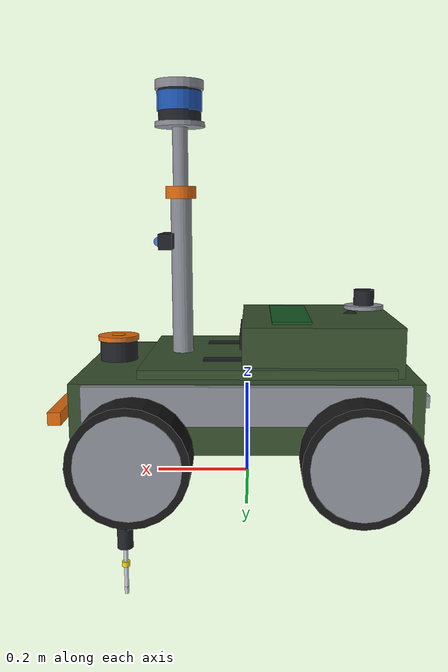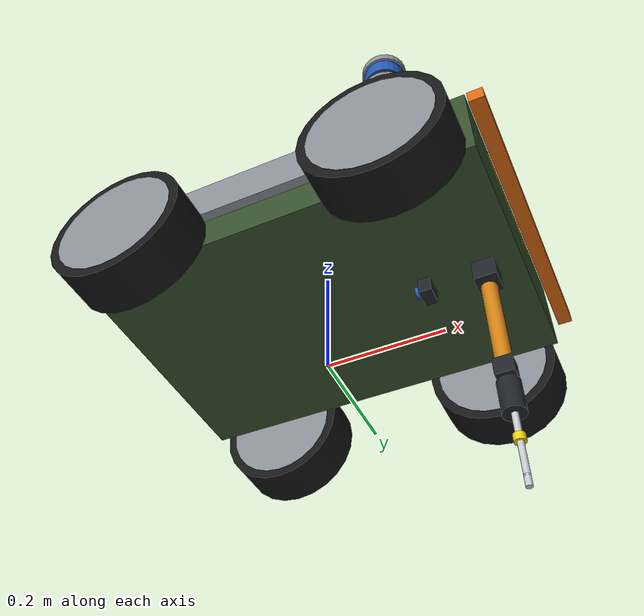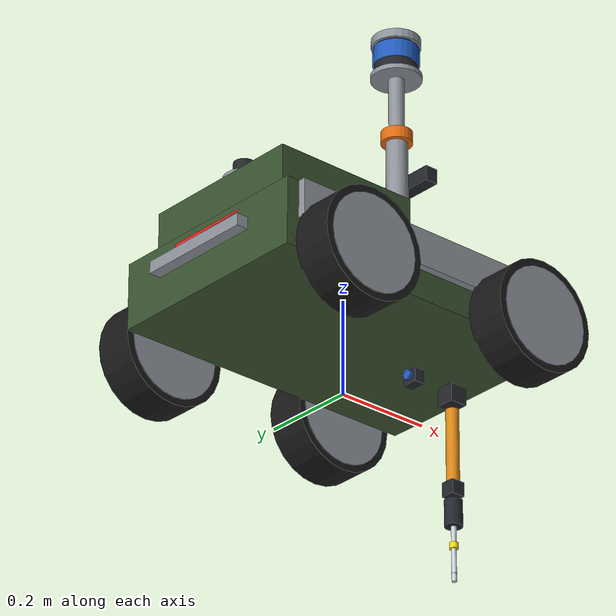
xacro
<?xml version="1.0"?>
<robot xmlns:xacro="http://www.ros.org/wiki/xacro"
       xmlns:gz="http://gazebosim.org/schema"
       name="agribot">

  <!-- ===== CHASSIS ===== -->
  <xacro:property name="base_l"  value="0.68"/>
  <xacro:property name="base_w"  value="0.46"/>
  <xacro:property name="base_h"  value="0.14"/>
  <xacro:property name="base_m"  value="18.0"/>

  <!-- ===== WHEELS ===== -->
  <xacro:property name="wr"    value="0.115"/>   <!-- radius -->
  <xacro:property name="ww"    value="0.085"/>   <!-- width  -->
  <xacro:property name="wm"    value="1.4"/>     <!-- mass   -->
  <xacro:property name="wx"    value="0.215"/>   <!-- half wheelbase -->
  <xacro:property name="wy"    value="0.285"/>   <!-- half track -->

  <!-- ===== ARM ===== -->
  <xacro:property name="arm_r" value="0.015"/>

  <!-- ==============================================================
       INERTIA HELPERS
       ============================================================== -->
  <xacro:macro name="box_inertia" params="m l w h">
    <inertial>
      <mass value="${m}"/>
      <inertia ixx="${m*(w*w+h*h)/12}" ixy="0" ixz="0"
               iyy="${m*(l*l+h*h)/12}" iyz="0"
               izz="${m*(l*l+w*w)/12}"/>
    </inertial>
  </xacro:macro>

  <xacro:macro name="cyl_inertia" params="m r h">
    <inertial>
      <mass value="${m}"/>
      <inertia ixx="${m*(3*r*r+h*h)/12}" ixy="0" ixz="0"
               iyy="${m*(3*r*r+h*h)/12}" iyz="0"
               izz="${m*r*r/2}"/>
    </inertial>
  </xacro:macro>

  <xacro:macro name="sph_inertia" params="m r">
    <inertial>
      <mass value="${m}"/>
      <inertia ixx="${2*m*r*r/5}" ixy="0" ixz="0"
               iyy="${2*m*r*r/5}" iyz="0"
               izz="${2*m*r*r/5}"/>
    </inertial>
  </xacro:macro>

  <xacro:macro name="null_inertia">
    <inertial>
      <mass value="0.001"/>
      <inertia ixx="0.000001" ixy="0" ixz="0" iyy="0.000001" iyz="0" izz="0.000001"/>
    </inertial>
  </xacro:macro>

  <!-- ==============================================================
       MATERIALS
       ============================================================== -->
  <!-- Chassis — matte olive/military green body panels -->
  <material name="body_green">   <color rgba="0.22 0.32 0.18 1.0"/></material>
  <!-- Accent — satin orange for safety elements -->
  <material name="accent_orange"><color rgba="0.88 0.42 0.06 1.0"/></material>
  <!-- Frame rails — brushed aluminium -->
  <material name="alu_frame">    <color rgba="0.55 0.57 0.60 1.0"/></material>
  <!-- Tyre rubber -->
  <material name="rubber_black"> <color rgba="0.09 0.09 0.09 1.0"/></material>
  <!-- Wheel hub -->
  <material name="hub_alloy">    <color rgba="0.78 0.80 0.83 1.0"/></material>
  <!-- Sensor housing — dark charcoal -->
  <material name="sensor_dark">  <color rgba="0.13 0.14 0.16 1.0"/></material>
  <!-- Sensor glass / lens -->
  <material name="lens_blue">    <color rgba="0.18 0.44 0.88 0.85"/></material>
  <!-- PCB green -->
  <material name="pcb_green">    <color rgba="0.08 0.35 0.14 1.0"/></material>
  <!-- Battery black -->
  <material name="batt_dark">    <color rgba="0.10 0.10 0.12 1.0"/></material>
  <!-- Probe tip silver -->
  <material name="probe_silver"> <color rgba="0.80 0.82 0.85 1.0"/></material>
  <!-- Status LED yellow -->
  <material name="led_yellow">   <color rgba="0.95 0.85 0.05 1.0"/></material>
  <!-- Status LED red -->
  <material name="led_red">      <color rgba="0.88 0.12 0.10 1.0"/></material>
  <!-- Arm orange-amber -->
  <material name="arm_amber">    <color rgba="0.85 0.52 0.08 1.0"/></material>

  <xacro:macro name="wheel" params="prefix x_s y_s">
    <link name="${prefix}_wheel">
      <!-- Tyre -->
      <visual>
        <origin xyz="0 0 0" rpy="${pi/2} 0 0"/>
        <geometry><cylinder radius="${wr}" length="${ww}"/></geometry>
        <material name="rubber_black"/>
      </visual>
      <!-- Inner tread ring (slightly narrower, lighter) -->
      <visual>
        <origin xyz="0 0 0" rpy="${pi/2} 0 0"/>
        <geometry><cylinder radius="${wr*0.87}" length="${ww*1.02}"/></geometry>
        <material name="alu_frame"/>
      </visual>
      <!-- Hub disc -->
      <visual>
        <origin xyz="0 ${y_s*0.015} 0" rpy="${pi/2} 0 0"/>
        <geometry><cylinder radius="${wr*0.50}" length="${ww*0.28}"/></geometry>
        <material name="hub_alloy"/>
      </visual>
      <!-- Hub centre cap -->
      <visual>
        <origin xyz="0 ${y_s*0.020} 0" rpy="${pi/2} 0 0"/>
        <geometry><cylinder radius="${wr*0.14}" length="${ww*0.18}"/></geometry>
        <material name="accent_orange"/>
      </visual>
      <!-- Lug nut ring (outer) -->
      <visual>
        <origin xyz="0 ${y_s*0.022} 0" rpy="${pi/2} 0 0"/>
        <geometry><cylinder radius="${wr*0.32}" length="${ww*0.06}"/></geometry>
        <material name="sensor_dark"/>
      </visual>
      <collision>
        <origin xyz="0 0 0" rpy="${pi/2} 0 0"/>
        <geometry><cylinder radius="${wr}" length="${ww}"/></geometry>
      </collision>
      <xacro:cyl_inertia m="${wm}" r="${wr}" h="${ww}"/>
    </link>

    <joint name="${prefix}_wheel_joint" type="continuous">
      <parent link="base_link"/>
      <child  link="${prefix}_wheel"/>
      <origin xyz="${x_s*wx} ${y_s*wy} ${-base_h/2 + 0.005}" rpy="0 0 0"/>
      <axis xyz="0 1 0"/>
      <limit effort="25.0" velocity="12.0"/>
      <dynamics damping="0.25" friction="0.55"/>
    </joint>

    <gazebo reference="${prefix}_wheel">
      <mu1>1.1</mu1>
      <mu2>0.15</mu2>
      <fdir1>1 0 0</fdir1>
      <kp>8e5</kp>
      <kd>20.0</kd>
      <material>Gazebo/Black</material>
    </gazebo>
  </xacro:macro>

  <!-- ==============================================================
       BASE FOOTPRINT
       ============================================================== -->
  <link name="base_footprint"/>
  <joint name="base_footprint_joint" type="fixed">
    <parent link="base_footprint"/>
    <child  link="base_link"/>
    <origin xyz="0 0 ${wr + base_h/2 - 0.005}" rpy="0 0 0"/>
  </joint>

  <!-- ==============================================================
       BASE LINK — multi-visual structured chassis
       ============================================================== -->
  <link name="base_link">
    <!-- Main deck plate -->
    <visual>
      <origin xyz="0 0 0" rpy="0 0 0"/>
      <geometry><box size="${base_l} ${base_w} ${base_h}"/></geometry>
      <material name="body_green"/>
    </visual>
    <!-- Left side panel (raised skirt) -->
    <visual>
      <origin xyz="0 ${base_w/2 + 0.008} 0.03" rpy="0 0 0"/>
      <geometry><box size="${base_l*0.92} 0.016 ${base_h*0.55}"/></geometry>
      <material name="alu_frame"/>
    </visual>
    <!-- Right side panel -->
    <visual>
      <origin xyz="0 ${-(base_w/2 + 0.008)} 0.03" rpy="0 0 0"/>
      <geometry><box size="${base_l*0.92} 0.016 ${base_h*0.55}"/></geometry>
      <material name="alu_frame"/>
    </visual>
    <!-- Front bull-bar cross-tube -->
    <visual>
      <origin xyz="${base_l/2 + 0.02} 0 0.01" rpy="0 0 0"/>
      <geometry><box size="0.025 ${base_w + 0.06} 0.025"/></geometry>
      <material name="accent_orange"/>
    </visual>
    <!-- Rear tow-bar -->
    <visual>
      <origin xyz="${-(base_l/2 + 0.02)} 0 0.01" rpy="0 0 0"/>
      <geometry><box size="0.025 ${base_w*0.55} 0.025"/></geometry>
      <material name="alu_frame"/>
    </visual>
    <!-- Top cover (slightly smaller than deck) -->
    <visual>
      <origin xyz="-0.04 0 ${base_h/2 + 0.012}" rpy="0 0 0"/>
      <geometry><box size="${base_l*0.74} ${base_w*0.88} 0.018"/></geometry>
      <material name="body_green"/>
    </visual>
    <!-- Venting slots (two dark bars on top) -->
    <visual>
      <origin xyz="-0.04 0.10 ${base_h/2 + 0.022}" rpy="0 0 0"/>
      <geometry><box size="${base_l*0.38} 0.030 0.004"/></geometry>
      <material name="sensor_dark"/>
    </visual>
    <visual>
      <origin xyz="-0.04 -0.10 ${base_h/2 + 0.022}" rpy="0 0 0"/>
      <geometry><box size="${base_l*0.38} 0.030 0.004"/></geometry>
      <material name="sensor_dark"/>
    </visual>
    <!-- Front status light bar -->
    <visual>
      <origin xyz="${base_l/2 - 0.005} 0 0.05" rpy="0 0 0"/>
      <geometry><box size="0.010 ${base_w*0.55} 0.018"/></geometry>
      <material name="led_yellow"/>
    </visual>
    <!-- Rear brake light strip -->
    <visual>
      <origin xyz="${-(base_l/2 - 0.005)} 0 0.05" rpy="0 0 0"/>
      <geometry><box size="0.010 ${base_w*0.40} 0.014"/></geometry>
      <material name="led_red"/>
    </visual>

    <collision>
      <origin xyz="0 0 0" rpy="0 0 0"/>
      <geometry><box size="${base_l} ${base_w} ${base_h}"/></geometry>
    </collision>
    <xacro:box_inertia m="${base_m}" l="${base_l}" w="${base_w}" h="${base_h}"/>
  </link>

  <gazebo reference="base_link">
    <material>Gazebo/DarkGreen</material>
  </gazebo>

  <!-- ===== FOUR WHEELS ===== -->
  <xacro:wheel prefix="fl" x_s=" 1" y_s=" 1"/>
  <xacro:wheel prefix="fr" x_s=" 1" y_s="-1"/>
  <xacro:wheel prefix="rl" x_s="-1" y_s=" 1"/>
  <xacro:wheel prefix="rr" x_s="-1" y_s="-1"/>

  <!-- ==============================================================
       ELECTRONICS BAY (raised module, rear half of chassis)
       ============================================================== -->
  <link name="elec_bay">
    <!-- Bay shell -->
    <visual>
      <origin xyz="0 0 0" rpy="0 0 0"/>
      <geometry><box size="0.32 0.36 0.10"/></geometry>
      <material name="body_green"/>
    </visual>
    <!-- Battery pack (left) -->
    <visual>
      <origin xyz="-0.02 0.09 0.025" rpy="0 0 0"/>
      <geometry><box size="0.20 0.13 0.048"/></geometry>
      <material name="batt_dark"/>
    </visual>
    <!-- Compute unit (right) -->
    <visual>
      <origin xyz="-0.02 -0.08 0.030" rpy="0 0 0"/>
      <geometry><box size="0.14 0.10 0.040"/></geometry>
      <material name="sensor_dark"/>
    </visual>
    <!-- PCB board -->
    <visual>
      <origin xyz="0.06 0 0.052" rpy="0 0 0"/>
      <geometry><box size="0.08 0.26 0.006"/></geometry>
      <material name="pcb_green"/>
    </visual>
    <!-- Connector strip (front face) -->
    <visual>
      <origin xyz="0.162 0 0.010" rpy="0 0 0"/>
      <geometry><box size="0.006 0.22 0.030"/></geometry>
      <material name="sensor_dark"/>
    </visual>
    <xacro:box_inertia m="3.5" l="0.32" w="0.36" h="0.10"/>
  </link>

  <joint name="elec_bay_joint" type="fixed">
    <parent link="base_link"/>
    <child  link="elec_bay"/>
    <origin xyz="-0.15 0 ${base_h/2 + 0.05}" rpy="0 0 0"/>
  </joint>

  <!-- ==============================================================
       SENSOR MAST (front, tall, slim)
       ============================================================== -->
  <link name="sensor_mast">
    <!-- Lower pole -->
    <visual>
      <origin xyz="0 0 0.18" rpy="0 0 0"/>
      <geometry><cylinder radius="0.022" length="0.36"/></geometry>
      <material name="alu_frame"/>
    </visual>
    <!-- Upper pole (thinner) -->
    <visual>
      <origin xyz="0 0 0.44" rpy="0 0 0"/>
      <geometry><cylinder radius="0.016" length="0.16"/></geometry>
      <material name="alu_frame"/>
    </visual>
    <!-- Mid clamp ring -->
    <visual>
      <origin xyz="0 0 0.36" rpy="0 0 0"/>
      <geometry><cylinder radius="0.032" length="0.025"/></geometry>
      <material name="accent_orange"/>
    </visual>
    <xacro:cyl_inertia m="0.45" r="0.022" h="0.52"/>
  </link>

  <joint name="mast_joint" type="fixed">
    <parent link="base_link"/>
    <child  link="sensor_mast"/>
    <origin xyz="0.14 0 ${base_h/2}" rpy="0 0 0"/>
  </joint>

  <!-- ==============================================================
       3D LiDAR (Ouster-style) — atop mast
       ============================================================== -->
  <link name="lidar_link">
    <!-- Cylindrical body -->
    <visual>
      <origin xyz="0 0 0" rpy="0 0 0"/>
      <geometry><cylinder radius="0.044" length="0.072"/></geometry>
      <material name="sensor_dark"/>
    </visual>
    <!-- Spinning ring (top) -->
    <visual>
      <origin xyz="0 0 0.040" rpy="0 0 0"/>
      <geometry><cylinder radius="0.050" length="0.018"/></geometry>
      <material name="alu_frame"/>
    </visual>
    <!-- Window band (translucent blue) -->
    <visual>
      <origin xyz="0 0 0.008" rpy="0 0 0"/>
      <geometry><cylinder radius="0.047" length="0.038"/></geometry>
      <material name="lens_blue"/>
    </visual>
    <!-- Base flange -->
    <visual>
      <origin xyz="0 0 -0.038" rpy="0 0 0"/>
      <geometry><cylinder radius="0.052" length="0.010"/></geometry>
      <material name="alu_frame"/>
    </visual>
    <collision>
      <origin xyz="0 0 0" rpy="0 0 0"/>
      <geometry><cylinder radius="0.052" length="0.075"/></geometry>
    </collision>
    <xacro:cyl_inertia m="0.48" r="0.044" h="0.072"/>
  </link>

  <joint name="lidar_joint" type="fixed">
    <parent link="sensor_mast"/>
    <child  link="lidar_link"/>
    <origin xyz="0 0 0.535" rpy="0 0 0"/>
  </joint>

  <gazebo reference="lidar_link">
    <sensor name="lidar_3d" type="gpu_lidar">
      <pose>0 0 0 0 0 0</pose>
      <visualize>false</visualize>
      <update_rate>20</update_rate>
      <ray>
        <scan>
          <horizontal>
            <samples>512</samples>
            <resolution>1</resolution>
            <min_angle>${-pi}</min_angle>
            <max_angle>${pi}</max_angle>
          </horizontal>
          <vertical>
            <samples>16</samples>
            <resolution>1</resolution>
            <min_angle>${-pi*15/180}</min_angle>
            <max_angle>${pi*15/180}</max_angle>
          </vertical>
        </scan>
        <range>
          <min>0.12</min>
          <max>100.0</max>
          <resolution>0.003</resolution>
        </range>
        <noise>
          <type>gaussian</type>
          <mean>0.0</mean>
          <stddev>0.006</stddev>
        </noise>
      </ray>
      <topic>/lidar/points</topic>
    </sensor>
    <material>Gazebo/Black</material>
  </gazebo>

  <!-- ==============================================================
       STEREO DEPTH CAMERA HEAD (mounted on mast, mid-height)
       ============================================================== -->
  <link name="stereo_camera_link">
    <!-- Bar housing -->
    <visual>
      <origin xyz="0 0 0" rpy="0 0 0"/>
      <geometry><box size="0.028 0.140 0.032"/></geometry>
      <material name="sensor_dark"/>
    </visual>
    <!-- Left lens -->
    <visual>
      <origin xyz="0.016 -0.046 0" rpy="${pi/2} 0 0"/>
      <geometry><cylinder radius="0.009" length="0.010"/></geometry>
      <material name="lens_blue"/>
    </visual>
    <!-- RGB centre lens -->
    <visual>
      <origin xyz="0.016 0 0" rpy="${pi/2} 0 0"/>
      <geometry><cylinder radius="0.010" length="0.010"/></geometry>
      <material name="lens_blue"/>
    </visual>
    <!-- Right lens -->
    <visual>
      <origin xyz="0.016 0.046 0" rpy="${pi/2} 0 0"/>
      <geometry><cylinder radius="0.009" length="0.010"/></geometry>
      <material name="lens_blue"/>
    </visual>
    <!-- Status LED on face -->
    <visual>
      <origin xyz="0.016 -0.060 0.010" rpy="${pi/2} 0 0"/>
      <geometry><sphere radius="0.004"/></geometry>
      <material name="led_yellow"/>
    </visual>
    <collision>
      <origin xyz="0 0 0" rpy="0 0 0"/>
      <geometry><box size="0.030 0.140 0.034"/></geometry>
    </collision>
    <xacro:box_inertia m="0.095" l="0.030" w="0.140" h="0.034"/>
  </link>

  <joint name="stereo_camera_joint" type="fixed">
    <parent link="sensor_mast"/>
    <child  link="stereo_camera_link"/>
    <origin xyz="0.028 0 0.26" rpy="0 0 0"/>
  </joint>

  <link name="stereo_camera_optical"/>
  <joint name="stereo_optical_joint" type="fixed">
    <parent link="stereo_camera_link"/>
    <child  link="stereo_camera_optical"/>
    <origin xyz="0 0 0" rpy="${-pi/2} 0 ${-pi/2}"/>
  </joint>

  <gazebo reference="stereo_camera_link">
    <sensor name="stereo_depth" type="depth">
      <gz:frame_id>stereo_camera_optical</gz:frame_id>
      <pose>0 0 0 0 0 0</pose>
      <visualize>false</visualize>
      <update_rate>30</update_rate>
      <camera>
        <horizontal_fov>1.518</horizontal_fov>
        <image>
          <width>640</width>
          <height>480</height>
          <format>R8G8B8</format>
        </image>
        <clip><near>0.08</near><far>10.0</far></clip>
        <noise>
          <type>gaussian</type>
          <mean>0.0</mean>
          <stddev>0.002</stddev>
        </noise>
      </camera>
      <topic>/camera/depth</topic>
    </sensor>
    <material>Gazebo/Black</material>
  </gazebo>

  <!-- ==============================================================
       CROP INSPECTION CAMERA (belly-mounted, nadir)
       ============================================================== -->
  <link name="nadir_camera_link">
    <visual>
      <origin xyz="0 0 0" rpy="0 0 0"/>
      <geometry><box size="0.034 0.034 0.022"/></geometry>
      <material name="sensor_dark"/>
    </visual>
    <visual>
      <origin xyz="0 0 -0.014" rpy="0 0 0"/>
      <geometry><cylinder radius="0.010" length="0.010"/></geometry>
      <material name="lens_blue"/>
    </visual>
    <xacro:null_inertia/>
  </link>

  <joint name="nadir_camera_joint" type="fixed">
    <parent link="base_link"/>
    <child  link="nadir_camera_link"/>
    <!-- Points straight down, centred forward on chassis -->
    <origin xyz="0.18 0 ${-base_h/2 - 0.012}" rpy="0 ${pi/2} 0"/>
  </joint>

  <link name="nadir_camera_optical"/>
  <joint name="nadir_optical_joint" type="fixed">
    <parent link="nadir_camera_link"/>
    <child  link="nadir_camera_optical"/>
    <origin xyz="0 0 0" rpy="${-pi/2} 0 ${-pi/2}"/>
  </joint>

  <gazebo reference="nadir_camera_link">
    <sensor name="nadir_cam" type="camera">
      <gz:frame_id>nadir_camera_optical</gz:frame_id>
      <update_rate>10</update_rate>
      <visualize>false</visualize>
      <topic>/camera/nadir</topic>
      <camera>
        <horizontal_fov>1.047</horizontal_fov>
        <image><width>640</width><height>480</height><format>R8G8B8</format></image>
        <clip><near>0.05</near><far>3.0</far></clip>
      </camera>
    </sensor>
    <material>Gazebo/Black</material>
  </gazebo>

  <!-- ==============================================================
       IMU
       ============================================================== -->
  <link name="imu_link">
    <visual>
      <origin xyz="0 0 0" rpy="0 0 0"/>
      <geometry><box size="0.028 0.028 0.008"/></geometry>
      <material name="led_red"/>
    </visual>
    <xacro:null_inertia/>
  </link>

  <joint name="imu_joint" type="fixed">
    <parent link="base_link"/>
    <child  link="imu_link"/>
    <origin xyz="0 0 0" rpy="0 0 0"/>
  </joint>

  <gazebo reference="imu_link">
    <sensor name="imu" type="imu">
      <always_on>true</always_on>
      <update_rate>400</update_rate>
      <imu>
        <angular_velocity>
          <x><noise type="gaussian"><mean>0</mean><stddev>0.00018</stddev></noise></x>
          <y><noise type="gaussian"><mean>0</mean><stddev>0.00018</stddev></noise></y>
          <z><noise type="gaussian"><mean>0</mean><stddev>0.00018</stddev></noise></z>
        </angular_velocity>
        <linear_acceleration>
          <x><noise type="gaussian"><mean>0</mean><stddev>0.009</stddev></noise></x>
          <y><noise type="gaussian"><mean>0</mean><stddev>0.009</stddev></noise></y>
          <z><noise type="gaussian"><mean>0</mean><stddev>0.009</stddev></noise></z>
        </linear_acceleration>
      </imu>
      <topic>/imu/data_raw</topic>
    </sensor>
  </gazebo>

  <!-- ==============================================================
       GPS
       ============================================================== -->
  <link name="gps_link">
    <!-- Ground plane -->
    <visual>
      <origin xyz="0 0 0.004" rpy="0 0 0"/>
      <geometry><cylinder radius="0.042" length="0.008"/></geometry>
      <material name="alu_frame"/>
    </visual>
    <!-- Antenna body -->
    <visual>
      <origin xyz="0 0 0.024" rpy="0 0 0"/>
      <geometry><cylinder radius="0.022" length="0.034"/></geometry>
      <material name="sensor_dark"/>
    </visual>
    <xacro:null_inertia/>
  </link>

  <joint name="gps_joint" type="fixed">
    <parent link="elec_bay"/>
    <child  link="gps_link"/>
    <origin xyz="-0.10 0 0.065" rpy="0 0 0"/>
  </joint>

  <gazebo reference="gps_link">
    <sensor name="navsat" type="navsat">
      <always_on>true</always_on>
      <update_rate>10</update_rate>
      <topic>/gps/fix</topic>
    </sensor>
  </gazebo>

  <!-- Turret base -->
  <link name="arm_turret">
    <visual>
      <origin xyz="0 0 0.028" rpy="0 0 0"/>
      <geometry><cylinder radius="0.040" length="0.050"/></geometry>
      <material name="sensor_dark"/>
    </visual>
    <!-- Rotation ring detail -->
    <visual>
      <origin xyz="0 0 0.052" rpy="0 0 0"/>
      <geometry><cylinder radius="0.044" length="0.010"/></geometry>
      <material name="accent_orange"/>
    </visual>
    <xacro:cyl_inertia m="0.30" r="0.040" h="0.055"/>
  </link>

  <!-- Turret yaw (pan left-right, looking for row entry point) -->
  <joint name="arm_turret_joint" type="revolute">
    <parent link="base_link"/>
    <child  link="arm_turret"/>
    <origin xyz="${base_l/2 - 0.06} 0 ${base_h/2}" rpy="0 0 0"/>
    <axis xyz="0 0 1"/>
    <limit lower="${-pi/3}" upper="${pi/3}" effort="12.0" velocity="1.2"/>
    <dynamics damping="0.8" friction="0.3"/>
  </joint>

  <!-- Upper arm -->
  <link name="arm_upper">
    <visual>
      <origin xyz="0 0 ${-0.21/2}" rpy="0 0 0"/>
      <geometry><cylinder radius="${arm_r}" length="0.21"/></geometry>
      <material name="arm_amber"/>
    </visual>
    <!-- Elbow servo box -->
    <visual>
      <origin xyz="0 0 -0.22" rpy="0 0 0"/>
      <geometry><box size="0.038 0.038 0.038"/></geometry>
      <material name="sensor_dark"/>
    </visual>
    <collision>
      <origin xyz="0 0 ${-0.21/2}" rpy="0 0 0"/>
      <geometry><cylinder radius="${arm_r}" length="0.21"/></geometry>
    </collision>
    <xacro:cyl_inertia m="0.14" r="${arm_r}" h="0.21"/>
  </link>

  <!-- Shoulder pitch (lifts/lowers arm) -->
  <joint name="arm_shoulder_joint" type="revolute">
    <parent link="arm_turret"/>
    <child  link="arm_upper"/>
    <origin xyz="0 0 0.058" rpy="0 0 0"/>
    <axis xyz="0 1 0"/>
    <limit lower="${-pi/2}" upper="${pi/6}" effort="14.0" velocity="1.0"/>
    <dynamics damping="0.6" friction="0.25"/>
  </joint>

  <!-- Forearm -->
  <link name="arm_forearm">
    <visual>
      <origin xyz="0 0 ${-0.16/2}" rpy="0 0 0"/>
      <geometry><cylinder radius="${arm_r*0.88}" length="0.16"/></geometry>
      <material name="arm_amber"/>
    </visual>
    <!-- Wrist servo -->
    <visual>
      <origin xyz="0 0 -0.17" rpy="0 0 0"/>
      <geometry><box size="0.030 0.030 0.030"/></geometry>
      <material name="sensor_dark"/>
    </visual>
    <collision>
      <origin xyz="0 0 ${-0.16/2}" rpy="0 0 0"/>
      <geometry><cylinder radius="${arm_r}" length="0.16"/></geometry>
    </collision>
    <xacro:cyl_inertia m="0.09" r="${arm_r}" h="0.16"/>
  </link>

  <joint name="arm_elbow_joint" type="revolute">
    <parent link="arm_upper"/>
    <child  link="arm_forearm"/>
    <origin xyz="0 0 ${-0.21 - 0.038}" rpy="0 0 0"/>
    <axis xyz="0 1 0"/>
    <limit lower="${-pi/2}" upper="${pi/3}" effort="10.0" velocity="1.2"/>
    <dynamics damping="0.45" friction="0.20"/>
  </joint>

  <!-- Probe carrier -->
  <link name="probe_carrier">
    <visual>
      <origin xyz="0 0 -0.030" rpy="0 0 0"/>
      <geometry><cylinder radius="0.018" length="0.055"/></geometry>
      <material name="sensor_dark"/>
    </visual>
    <!-- Sensor head with yellow circuit board visible -->
    <visual>
      <origin xyz="0 0 -0.020" rpy="0 0 0"/>
      <geometry><box size="0.024 0.024 0.030"/></geometry>
      <material name="pcb_green"/>
    </visual>
    <xacro:cyl_inertia m="0.06" r="0.018" h="0.055"/>
  </link>

  <joint name="arm_wrist_joint" type="revolute">
    <parent link="arm_forearm"/>
    <child  link="probe_carrier"/>
    <origin xyz="0 0 ${-0.16 - 0.030}" rpy="0 0 0"/>
    <axis xyz="0 1 0"/>
    <limit lower="${-pi/4}" upper="${pi/4}" effort="6.0" velocity="1.5"/>
    <dynamics damping="0.20" friction="0.10"/>
  </joint>

  <!-- Soil probe rod (prismatic — drives into soil) -->
  <link name="soil_probe">
    <!-- Steel rod -->
    <visual>
      <origin xyz="0 0 -0.065" rpy="0 0 0"/>
      <geometry><cylinder radius="0.005" length="0.125"/></geometry>
      <material name="probe_silver"/>
    </visual>
    <!-- Conical hardened tip -->
    <visual>
      <origin xyz="0 0 -0.133" rpy="${pi} 0 0"/>
      <geometry><cylinder radius="0.005" length="0.018"/></geometry>
      <material name="probe_silver"/>
    </visual>
    <!-- Capacitive ring (sensor band) -->
    <visual>
      <origin xyz="0 0 -0.068" rpy="0 0 0"/>
      <geometry><cylinder radius="0.009" length="0.012"/></geometry>
      <material name="led_yellow"/>
    </visual>
    <collision>
      <origin xyz="0 0 -0.065" rpy="0 0 0"/>
      <geometry><cylinder radius="0.007" length="0.130"/></geometry>
    </collision>
    <xacro:cyl_inertia m="0.045" r="0.005" h="0.140"/>
  </link>

  <!-- Prismatic: 0 = retracted, 0.18 = fully inserted into soil -->
  <joint name="probe_joint" type="prismatic">
    <parent link="probe_carrier"/>
    <child  link="soil_probe"/>
    <origin xyz="0 0 -0.030" rpy="0 0 0"/>
    <axis xyz="0 0 -1"/>
    <limit lower="0.0" upper="0.18" effort="25.0" velocity="0.08"/>
    <dynamics damping="2.0" friction="1.5"/>
  </joint>

  <!-- ==============================================================
       GAZEBO PLUGINS
       ============================================================== -->
  <gazebo>
    <!-- 4WD Differential Drive -->
    <plugin filename="gz-sim-diff-drive-system" name="gz::sim::systems::DiffDrive">
      <left_joint>fl_wheel_joint</left_joint>
      <left_joint>rl_wheel_joint</left_joint>
      <right_joint>fr_wheel_joint</right_joint>
      <right_joint>rr_wheel_joint</right_joint>
      <wheel_separation>${wy * 2.0}</wheel_separation>
      <wheel_radius>${wr}</wheel_radius>
      <odom_publish_frequency>50</odom_publish_frequency>
      <max_linear_acceleration>2.0</max_linear_acceleration>
      <max_angular_acceleration>3.0</max_angular_acceleration>
      <topic>/cmd_vel</topic>
      <odom_topic>/odom</odom_topic>
      <tf_topic>/tf</tf_topic>
      <frame_id>odom</frame_id>
      <child_frame_id>base_footprint</child_frame_id>
    </plugin>

    <!-- Joint states for all moving joints -->
    <plugin filename="gz-sim-joint-state-publisher-system" name="gz::sim::systems::JointStatePublisher">
      <topic>/joint_states</topic>
      <joint_name>fl_wheel_joint</joint_name>
      <joint_name>fr_wheel_joint</joint_name>
      <joint_name>rl_wheel_joint</joint_name>
      <joint_name>rr_wheel_joint</joint_name>
      <joint_name>arm_turret_joint</joint_name>
      <joint_name>arm_shoulder_joint</joint_name>
      <joint_name>arm_elbow_joint</joint_name>
      <joint_name>arm_wrist_joint</joint_name>
      <joint_name>probe_joint</joint_name>
    </plugin>

    <!-- Arm turret (pan) PID controller -->
    <plugin filename="gz-sim-joint-position-controller-system" name="gz::sim::systems::JointPositionController">
      <joint_name>arm_turret_joint</joint_name>
      <topic>/arm/turret/cmd_pos</topic>
      <p_gain>18.0</p_gain><i_gain>0.2</i_gain><d_gain>1.0</d_gain>
      <i_max>2.0</i_max><i_min>-2.0</i_min>
      <cmd_max>12.0</cmd_max><cmd_min>-12.0</cmd_min>
    </plugin>

    <!-- Arm shoulder PID controller -->
    <plugin filename="gz-sim-joint-position-controller-system" name="gz::sim::systems::JointPositionController">
      <joint_name>arm_shoulder_joint</joint_name>
      <topic>/arm/shoulder/cmd_pos</topic>
      <p_gain>22.0</p_gain><i_gain>0.3</i_gain><d_gain>1.5</d_gain>
      <i_max>2.0</i_max><i_min>-2.0</i_min>
      <cmd_max>14.0</cmd_max><cmd_min>-14.0</cmd_min>
    </plugin>

    <!-- Arm elbow PID controller -->
    <plugin filename="gz-sim-joint-position-controller-system" name="gz::sim::systems::JointPositionController">
      <joint_name>arm_elbow_joint</joint_name>
      <topic>/arm/elbow/cmd_pos</topic>
      <p_gain>16.0</p_gain><i_gain>0.2</i_gain><d_gain>1.0</d_gain>
      <i_max>1.5</i_max><i_min>-1.5</i_min>
      <cmd_max>10.0</cmd_max><cmd_min>-10.0</cmd_min>
    </plugin>

    <!-- Arm wrist PID controller -->
    <plugin filename="gz-sim-joint-position-controller-system" name="gz::sim::systems::JointPositionController">
      <joint_name>arm_wrist_joint</joint_name>
      <topic>/arm/wrist/cmd_pos</topic>
      <p_gain>10.0</p_gain><i_gain>0.1</i_gain><d_gain>0.6</d_gain>
      <i_max>0.8</i_max><i_min>-0.8</i_min>
      <cmd_max>6.0</cmd_max><cmd_min>-6.0</cmd_min>
    </plugin>

    <!-- Probe position (prismatic) -->
    <plugin filename="gz-sim-joint-position-controller-system" name="gz::sim::systems::JointPositionController">
      <joint_name>probe_joint</joint_name>
      <topic>/arm/probe/cmd_pos</topic>
      <p_gain>80.0</p_gain><i_gain>0.5</i_gain><d_gain>4.0</d_gain>
      <i_max>5.0</i_max><i_min>-5.0</i_min>
      <cmd_max>25.0</cmd_max><cmd_min>-25.0</cmd_min>
    </plugin>

    <!-- Ground-truth pose publisher -->
    <plugin filename="gz-sim-pose-publisher-system" name="gz::sim::systems::PosePublisher">
      <publish_link_pose>true</publish_link_pose>
      <publish_sensor_pose>true</publish_sensor_pose>
      <publish_collision_pose>false</publish_collision_pose>
      <publish_visual_pose>false</publish_visual_pose>
      <update_frequency>50</update_frequency>
      <topic>/ground_truth/pose</topic>
    </plugin>
  </gazebo>

</robot>
